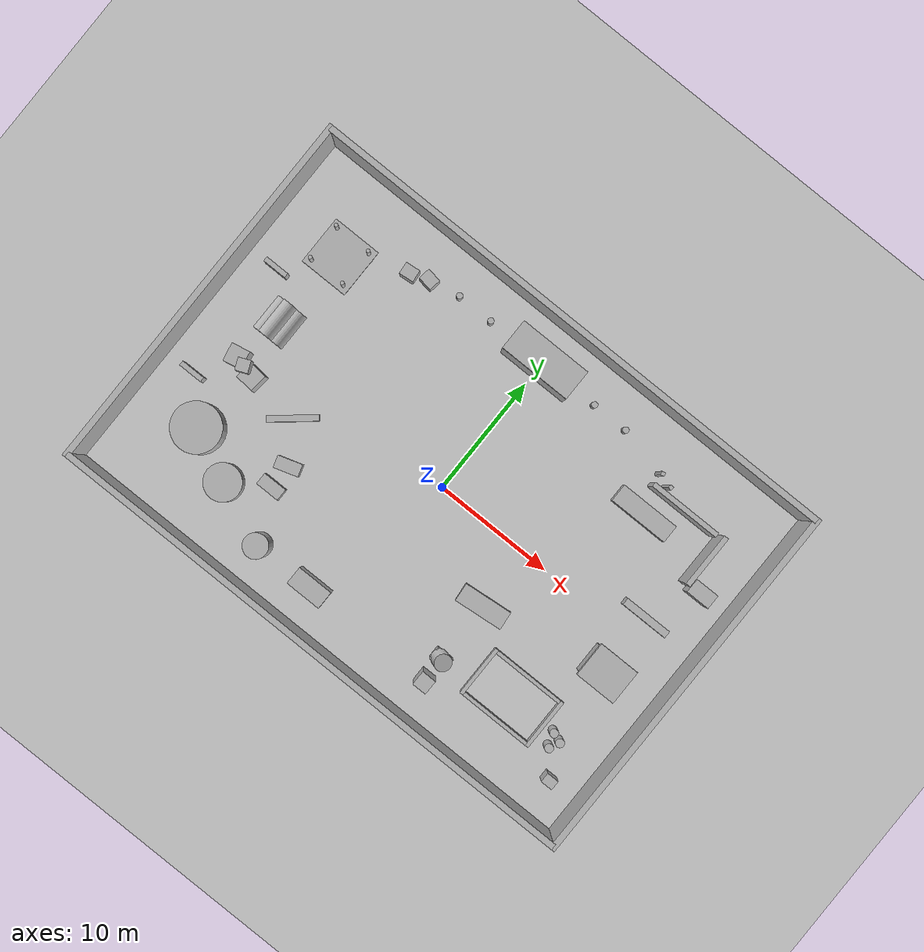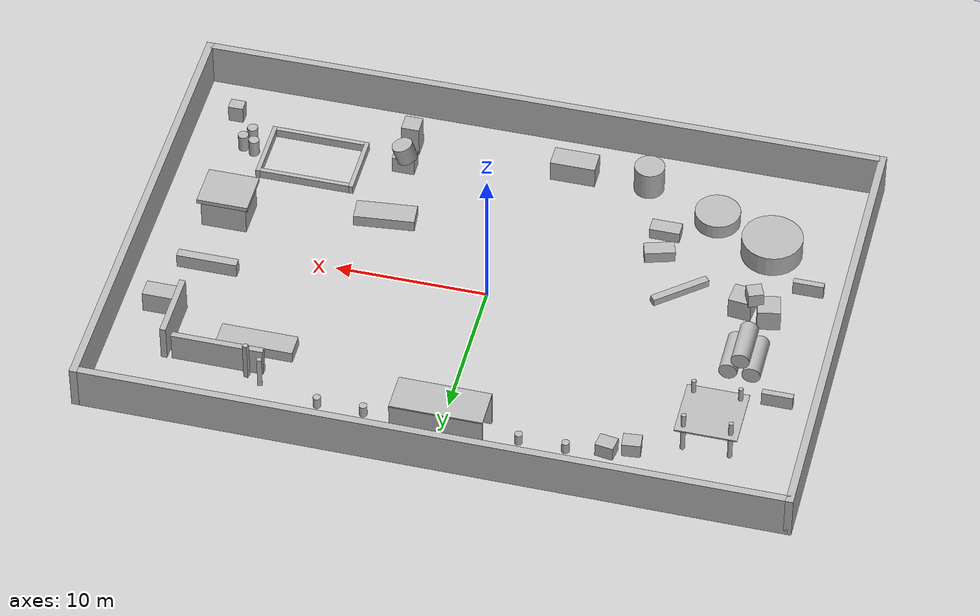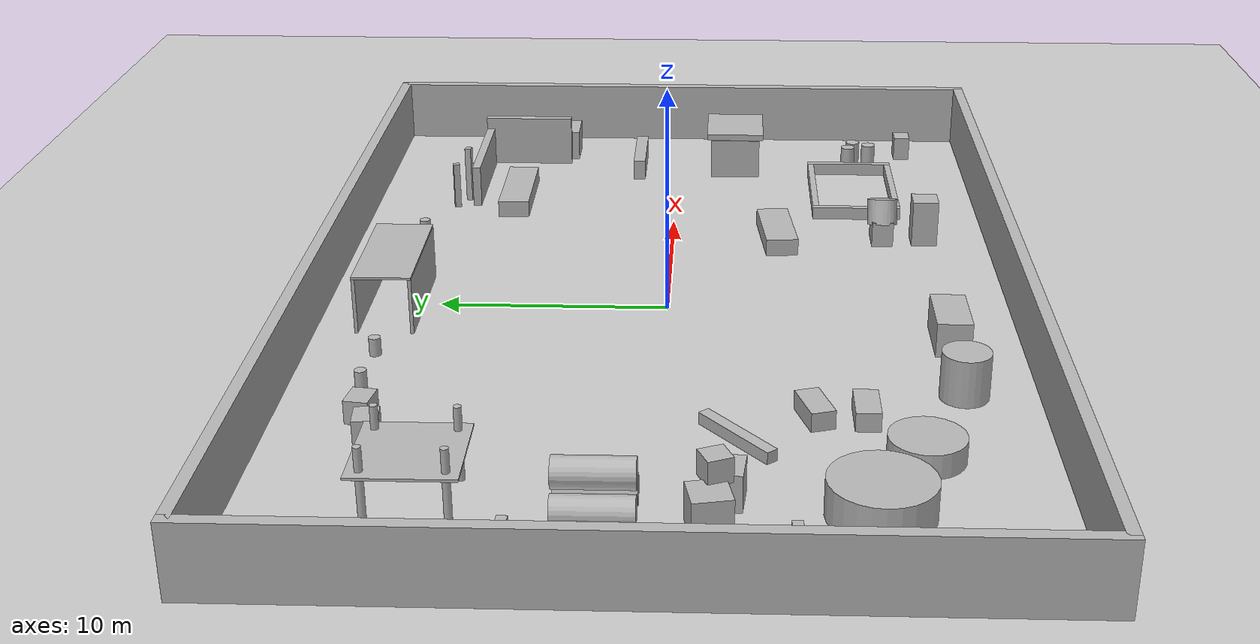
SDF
<sdf version='1.7'>
  <world name='construction_site_big'>

    <!-- Lighting -->
    <light name='sun' type='directional'>
      <cast_shadows>1</cast_shadows>
      <pose>0 0 15 0 -0 0</pose>
      <diffuse>0.8 0.8 0.8 1</diffuse>
      <specular>0.2 0.2 0.2 1</specular>
      <attenuation>
        <range>1000</range>
        <constant>0.9</constant>
        <linear>0.01</linear>
        <quadratic>0.001</quadratic>
      </attenuation>
      <direction>-0.5 0.1 -0.9</direction>
    </light>

    <!-- Ground Plane -->
    <model name='ground_plane'>
      <static>1</static>
      <link name='link'>
        <collision name='collision'>
          <geometry>
            <plane>
              <normal>0 0 1</normal>
              <size>50 35</size>
            </plane>
          </geometry>
          <surface>
            <friction>
              <ode>
                <mu>100</mu>
                <mu2>50</mu2>
              </ode>
            </friction>
          </surface>
        </collision>
        <visual name='visual'>
          <cast_shadows>0</cast_shadows>
          <geometry>
            <plane>
              <normal>0 0 1</normal>
              <size>50 35</size>
            </plane>
          </geometry>
          <material>
            <script>
              <uri>file://media/materials/scripts/gazebo.material</uri>
              <n>Gazebo/DarkGrey</n>
            </script>
          </material>
        </visual>
      </link>
    </model>

    <!-- Physics -->
    <physics type='ode'>
      <max_step_size>0.001</max_step_size>
      <real_time_factor>1</real_time_factor>
      <real_time_update_rate>1000</real_time_update_rate>
    </physics>

    <!-- Construction Site Features -->
    <model name='construction_site'>
      <pose>0 0 0 0 0 0</pose>
      <static>1</static>

      <!-- Boundary Walls (45x30m interior, 3m height) -->
      <link name='North_Wall'>
        <pose>0 15.25 1.5 0 0 0</pose>
        <collision name='col'><geometry><box><size>45.5 0.5 3</size></box></geometry></collision>
        <visual name='vis'><geometry><box><size>45.5 0.5 3</size></box></geometry>
        <material><script><n>Gazebo/Grey</n></script></material></visual>
      </link>
      <link name='South_Wall'>
        <pose>0 -15.25 1.5 0 0 0</pose>
        <collision name='col'><geometry><box><size>45.5 0.5 3</size></box></geometry></collision>
        <visual name='vis'><geometry><box><size>45.5 0.5 3</size></box></geometry>
        <material><script><n>Gazebo/Grey</n></script></material></visual>
      </link>
      <link name='East_Wall'>
        <pose>22.75 0 1.5 0 0 0</pose>
        <collision name='col'><geometry><box><size>0.5 31 3</size></box></geometry></collision>
        <visual name='vis'><geometry><box><size>0.5 31 3</size></box></geometry>
        <material><script><n>Gazebo/Grey</n></script></material></visual>
      </link>
      <link name='West_Wall'>
        <pose>-22.75 0 1.5 0 0 0</pose>
        <collision name='col'><geometry><box><size>0.5 31 3</size></box></geometry></collision>
        <visual name='vis'><geometry><box><size>0.5 31 3</size></box></geometry>
        <material><script><n>Gazebo/Grey</n></script></material></visual>
      </link>

      <!-- ============ NORTHWEST QUADRANT ============ -->

      <!-- Scaffolding Structure -->
      <link name='Scaffold_Post_1'>
        <pose>-18 10 1.5 0 0 0</pose>
        <collision name='col'><geometry><cylinder><radius>0.15</radius><length>3</length></cylinder></geometry></collision>
        <visual name='vis'><geometry><cylinder><radius>0.15</radius><length>3</length></cylinder></geometry>
        <material><script><n>Gazebo/Orange</n></script></material></visual>
      </link>
      <link name='Scaffold_Post_2'>
        <pose>-15 10 1.5 0 0 0</pose>
        <collision name='col'><geometry><cylinder><radius>0.15</radius><length>3</length></cylinder></geometry></collision>
        <visual name='vis'><geometry><cylinder><radius>0.15</radius><length>3</length></cylinder></geometry>
        <material><script><n>Gazebo/Orange</n></script></material></visual>
      </link>
      <link name='Scaffold_Post_3'>
        <pose>-18 7 1.5 0 0 0</pose>
        <collision name='col'><geometry><cylinder><radius>0.15</radius><length>3</length></cylinder></geometry></collision>
        <visual name='vis'><geometry><cylinder><radius>0.15</radius><length>3</length></cylinder></geometry>
        <material><script><n>Gazebo/Orange</n></script></material></visual>
      </link>
      <link name='Scaffold_Post_4'>
        <pose>-15 7 1.5 0 0 0</pose>
        <collision name='col'><geometry><cylinder><radius>0.15</radius><length>3</length></cylinder></geometry></collision>
        <visual name='vis'><geometry><cylinder><radius>0.15</radius><length>3</length></cylinder></geometry>
        <material><script><n>Gazebo/Orange</n></script></material></visual>
      </link>
      <link name='Scaffold_Platform'>
        <pose>-16.5 8.5 2 0 0 0</pose>
        <collision name='col'><geometry><box><size>4 4 0.1</size></box></geometry></collision>
        <visual name='vis'><geometry><box><size>4 4 0.1</size></box></geometry>
        <material><script><n>Gazebo/Wood</n></script></material></visual>
      </link>

      <!-- Concrete Pipes Stack -->
      <link name='Pipe_1'>
        <pose>-18 2 0.6 1.57 0 0</pose>
        <collision name='col'><geometry><cylinder><radius>0.6</radius><length>3</length></cylinder></geometry></collision>
        <visual name='vis'><geometry><cylinder><radius>0.6</radius><length>3</length></cylinder></geometry>
        <material><script><n>Gazebo/Rocky</n></script></material></visual>
      </link>
      <link name='Pipe_2'>
        <pose>-16.5 2 0.6 1.57 0 0</pose>
        <collision name='col'><geometry><cylinder><radius>0.6</radius><length>3</length></cylinder></geometry></collision>
        <visual name='vis'><geometry><cylinder><radius>0.6</radius><length>3</length></cylinder></geometry>
        <material><script><n>Gazebo/Rocky</n></script></material></visual>
      </link>
      <link name='Pipe_3'>
        <pose>-17.25 2 1.7 1.57 0 0</pose>
        <collision name='col'><geometry><cylinder><radius>0.6</radius><length>3</length></cylinder></geometry></collision>
        <visual name='vis'><geometry><cylinder><radius>0.6</radius><length>3</length></cylinder></geometry>
        <material><script><n>Gazebo/Rocky</n></script></material></visual>
      </link>

      <!-- Brick Pallets -->
      <link name='Brick_Pallet_1'>
        <pose>-12 11 0.5 0 0 0.1</pose>
        <collision name='col'><geometry><box><size>1.2 1 1</size></box></geometry></collision>
        <visual name='vis'><geometry><box><size>1.2 1 1</size></box></geometry>
        <material><script><n>Gazebo/Bricks</n></script></material></visual>
      </link>
      <link name='Brick_Pallet_2'>
        <pose>-10.5 11.5 0.5 0 0 -0.15</pose>
        <collision name='col'><geometry><box><size>1.2 1 1</size></box></geometry></collision>
        <visual name='vis'><geometry><box><size>1.2 1 1</size></box></geometry>
        <material><script><n>Gazebo/Bricks</n></script></material></visual>
      </link>

      <!-- ============ NORTHEAST QUADRANT ============ -->

      <!-- Partially Built Wall -->
      <link name='Partial_Wall_1'>
        <pose>15 10 1 0 0 0</pose>
        <collision name='col'><geometry><box><size>6 0.4 2</size></box></geometry></collision>
        <visual name='vis'><geometry><box><size>6 0.4 2</size></box></geometry>
        <material><script><n>Gazebo/Bricks</n></script></material></visual>
      </link>
      <link name='Partial_Wall_2'>
        <pose>18.5 8 1.25 0 0 0</pose>
        <collision name='col'><geometry><box><size>0.4 4.5 2.5</size></box></geometry></collision>
        <visual name='vis'><geometry><box><size>0.4 4.5 2.5</size></box></geometry>
        <material><script><n>Gazebo/Bricks</n></script></material></visual>
      </link>

      <!-- Steel Beams -->
      <link name='Steel_Beam_1'>
        <pose>12 11 0.2 0 1.57 0.3</pose>
        <collision name='col'><geometry><box><size>4 0.3 0.3</size></box></geometry></collision>
        <visual name='vis'><geometry><box><size>4 0.3 0.3</size></box></geometry>
        <material><script><n>Gazebo/Grey</n></script></material></visual>
      </link>
      <link name='Steel_Beam_2'>
        <pose>13 10.5 0.2 0 1.57 -0.2</pose>
        <collision name='col'><geometry><box><size>5 0.3 0.3</size></box></geometry></collision>
        <visual name='vis'><geometry><box><size>5 0.3 0.3</size></box></geometry>
        <material><script><n>Gazebo/Grey</n></script></material></visual>
      </link>
      <link name='Steel_Beam_Stack'>
        <pose>13 8 0.4 0 0 0</pose>
        <collision name='col'><geometry><box><size>5 1.5 0.8</size></box></geometry></collision>
        <visual name='vis'><geometry><box><size>5 1.5 0.8</size></box></geometry>
        <material><script><n>Gazebo/Grey</n></script></material></visual>
      </link>

      <!-- Concrete Barrier -->
      <link name='Concrete_Barrier_NE'>
        <pose>18 2 0.5 0 0 0</pose>
        <collision name='col'><geometry><box><size>4 0.6 1</size></box></geometry></collision>
        <visual name='vis'><geometry><box><size>4 0.6 1</size></box></geometry>
        <material><script><n>Gazebo/Rocky</n></script></material></visual>
      </link>

      <!-- Tool Shed -->
      <link name='Tool_Shed_Base'>
        <pose>18 -3 1 0 0 0</pose>
        <collision name='col'><geometry><box><size>3 2.5 2</size></box></geometry></collision>
        <visual name='vis'><geometry><box><size>3 2.5 2</size></box></geometry>
        <material><script><n>Gazebo/Blue</n></script></material></visual>
      </link>
      <link name='Tool_Shed_Roof'>
        <pose>18 -3 2.25 0 0 0</pose>
        <collision name='col'><geometry><box><size>3.4 2.9 0.3</size></box></geometry></collision>
        <visual name='vis'><geometry><box><size>3.4 2.9 0.3</size></box></geometry>
        <material><script><n>Gazebo/Red</n></script></material></visual>
      </link>

      <!-- ============ SOUTHWEST QUADRANT ============ -->

      <!-- Sand/Gravel Piles -->
      <link name='Sand_Pile'>
        <pose>-17 -8 0.75 0 0 0</pose>
        <collision name='col'><geometry><cylinder><radius>2</radius><length>1.5</length></cylinder></geometry></collision>
        <visual name='vis'><geometry><cylinder><radius>2</radius><length>1.5</length></cylinder></geometry>
        <material><script><n>Gazebo/SandyBrown</n></script></material></visual>
      </link>
      <link name='Gravel_Pile'>
        <pose>-13 -10 0.5 0 0 0</pose>
        <collision name='col'><geometry><cylinder><radius>1.5</radius><length>1</length></cylinder></geometry></collision>
        <visual name='vis'><geometry><cylinder><radius>1.5</radius><length>1</length></cylinder></geometry>
        <material><script><n>Gazebo/Rock</n></script></material></visual>
      </link>

      <!-- Wooden Crates Cluster -->
      <link name='Crate_Large_1'>
        <pose>-18 -2 0.75 0 0 0.2</pose>
        <collision name='col'><geometry><box><size>1.5 1.5 1.5</size></box></geometry></collision>
        <visual name='vis'><geometry><box><size>1.5 1.5 1.5</size></box></geometry>
        <material><script><n>Gazebo/Wood</n></script></material></visual>
      </link>
      <link name='Crate_Large_2'>
        <pose>-16.2 -2.5 0.75 0 0 -0.1</pose>
        <collision name='col'><geometry><box><size>1.5 1.5 1.5</size></box></geometry></collision>
        <visual name='vis'><geometry><box><size>1.5 1.5 1.5</size></box></geometry>
        <material><script><n>Gazebo/Wood</n></script></material></visual>
      </link>
      <link name='Crate_Small'>
        <pose>-17 -2.2 1.9 0 0 0.4</pose>
        <collision name='col'><geometry><box><size>1 1 1</size></box></geometry></collision>
        <visual name='vis'><geometry><box><size>1 1 1</size></box></geometry>
        <material><script><n>Gazebo/Wood</n></script></material></visual>
      </link>

      <!-- Concrete Blocks -->
      <link name='Concrete_Block_1'>
        <pose>-10 -8 0.4 0 0 0</pose>
        <collision name='col'><geometry><box><size>2 1 0.8</size></box></geometry></collision>
        <visual name='vis'><geometry><box><size>2 1 0.8</size></box></geometry>
        <material><script><n>Gazebo/Rocky</n></script></material></visual>
      </link>
      <link name='Concrete_Block_2'>
        <pose>-10 -6 0.4 0 0 0.3</pose>
        <collision name='col'><geometry><box><size>2 1 0.8</size></box></geometry></collision>
        <visual name='vis'><geometry><box><size>2 1 0.8</size></box></geometry>
        <material><script><n>Gazebo/Rocky</n></script></material></visual>
      </link>

      <!-- Rebar Bundle -->
      <link name='Rebar_Bundle'>
        <pose>-12 -3 0.3 0 0 0.7</pose>
        <collision name='col'><geometry><box><size>4 0.5 0.5</size></box></geometry></collision>
        <visual name='vis'><geometry><box><size>4 0.5 0.5</size></box></geometry>
        <material><script><n>Gazebo/DarkGrey</n></script></material></visual>
      </link>

      <!-- ============ SOUTHEAST QUADRANT ============ -->

      <!-- Excavation Pit (represented as low walls) -->
      <link name='Pit_Wall_N'>
        <pose>14 -7 0.3 0 0 0</pose>
        <collision name='col'><geometry><box><size>6 0.3 0.6</size></box></geometry></collision>
        <visual name='vis'><geometry><box><size>6 0.3 0.6</size></box></geometry>
        <material><script><n>Gazebo/DarkGrey</n></script></material></visual>
      </link>
      <link name='Pit_Wall_S'>
        <pose>14 -11 0.3 0 0 0</pose>
        <collision name='col'><geometry><box><size>6 0.3 0.6</size></box></geometry></collision>
        <visual name='vis'><geometry><box><size>6 0.3 0.6</size></box></geometry>
        <material><script><n>Gazebo/DarkGrey</n></script></material></visual>
      </link>
      <link name='Pit_Wall_E'>
        <pose>17.15 -9 0.3 0 0 0</pose>
        <collision name='col'><geometry><box><size>0.3 4.3 0.6</size></box></geometry></collision>
        <visual name='vis'><geometry><box><size>0.3 4.3 0.6</size></box></geometry>
        <material><script><n>Gazebo/DarkGrey</n></script></material></visual>
      </link>
      <link name='Pit_Wall_W'>
        <pose>10.85 -9 0.3 0 0 0</pose>
        <collision name='col'><geometry><box><size>0.3 4.3 0.6</size></box></geometry></collision>
        <visual name='vis'><geometry><box><size>0.3 4.3 0.6</size></box></geometry>
        <material><script><n>Gazebo/DarkGrey</n></script></material></visual>
      </link>

      <!-- Cement Mixer -->
      <link name='Cement_Mixer_Base'>
        <pose>8 -10 0.6 0 0 0</pose>
        <collision name='col'><geometry><box><size>1.5 1 1.2</size></box></geometry></collision>
        <visual name='vis'><geometry><box><size>1.5 1 1.2</size></box></geometry>
        <material><script><n>Gazebo/Yellow</n></script></material></visual>
      </link>
      <link name='Cement_Mixer_Drum'>
        <pose>8 -10 1.5 0 0.3 0</pose>
        <collision name='col'><geometry><cylinder><radius>0.7</radius><length>1.2</length></cylinder></geometry></collision>
        <visual name='vis'><geometry><cylinder><radius>0.7</radius><length>1.2</length></cylinder></geometry>
        <material><script><n>Gazebo/Orange</n></script></material></visual>
      </link>

      <!-- Lumber Stack -->
      <link name='Lumber_Stack'>
        <pose>8 -5 0.4 0 0 0.1</pose>
        <collision name='col'><geometry><box><size>4 1.5 0.8</size></box></geometry></collision>
        <visual name='vis'><geometry><box><size>4 1.5 0.8</size></box></geometry>
        <material><script><n>Gazebo/Wood</n></script></material></visual>
      </link>

      <!-- Oil Drums -->
      <link name='Oil_Drum_1'>
        <pose>18 -9 0.6 0 0 0</pose>
        <collision name='col'><geometry><cylinder><radius>0.35</radius><length>1.2</length></cylinder></geometry></collision>
        <visual name='vis'><geometry><cylinder><radius>0.35</radius><length>1.2</length></cylinder></geometry>
        <material><script><n>Gazebo/Black</n></script></material></visual>
      </link>
      <link name='Oil_Drum_2'>
        <pose>18.8 -9.3 0.6 0 0 0</pose>
        <collision name='col'><geometry><cylinder><radius>0.35</radius><length>1.2</length></cylinder></geometry></collision>
        <visual name='vis'><geometry><cylinder><radius>0.35</radius><length>1.2</length></cylinder></geometry>
        <material><script><n>Gazebo/Black</n></script></material></visual>
      </link>
      <link name='Oil_Drum_3'>
        <pose>18.4 -10.1 0.6 0 0 0</pose>
        <collision name='col'><geometry><cylinder><radius>0.35</radius><length>1.2</length></cylinder></geometry></collision>
        <visual name='vis'><geometry><cylinder><radius>0.35</radius><length>1.2</length></cylinder></geometry>
        <material><script><n>Gazebo/Black</n></script></material></visual>
      </link>

      <!-- Portable Toilet -->
      <link name='Portable_Toilet'>
        <pose>8 -12 1.1 0 0 0</pose>
        <collision name='col'><geometry><box><size>1.2 1.2 2.2</size></box></geometry></collision>
        <visual name='vis'><geometry><box><size>1.2 1.2 2.2</size></box></geometry>
        <material><script><n>Gazebo/Blue</n></script></material></visual>
      </link>

      <!-- ============ PERIMETER OBJECTS ============ -->

      <!-- Safety Barriers along paths -->
      <link name='Barrier_West_1'>
        <pose>-20 5 0.5 0 0 0</pose>
        <collision name='col'><geometry><box><size>2 0.4 1</size></box></geometry></collision>
        <visual name='vis'><geometry><box><size>2 0.4 1</size></box></geometry>
        <material><script><n>Gazebo/Orange</n></script></material></visual>
      </link>
      <link name='Barrier_West_2'>
        <pose>-20 -5 0.5 0 0 0</pose>
        <collision name='col'><geometry><box><size>2 0.4 1</size></box></geometry></collision>
        <visual name='vis'><geometry><box><size>2 0.4 1</size></box></geometry>
        <material><script><n>Gazebo/Orange</n></script></material></visual>
      </link>

      <!-- Traffic Cones -->
      <link name='Cone_1'>
        <pose>-8 12 0.4 0 0 0</pose>
        <collision name='col'><geometry><cylinder><radius>0.25</radius><length>0.8</length></cylinder></geometry></collision>
        <visual name='vis'><geometry><cylinder><radius>0.25</radius><length>0.8</length></cylinder></geometry>
        <material><script><n>Gazebo/Orange</n></script></material></visual>
      </link>
      <link name='Cone_2'>
        <pose>-5 12 0.4 0 0 0</pose>
        <collision name='col'><geometry><cylinder><radius>0.25</radius><length>0.8</length></cylinder></geometry></collision>
        <visual name='vis'><geometry><cylinder><radius>0.25</radius><length>0.8</length></cylinder></geometry>
        <material><script><n>Gazebo/Orange</n></script></material></visual>
      </link>
      <link name='Cone_3'>
        <pose>5 12 0.4 0 0 0</pose>
        <collision name='col'><geometry><cylinder><radius>0.25</radius><length>0.8</length></cylinder></geometry></collision>
        <visual name='vis'><geometry><cylinder><radius>0.25</radius><length>0.8</length></cylinder></geometry>
        <material><script><n>Gazebo/Orange</n></script></material></visual>
      </link>
      <link name='Cone_4'>
        <pose>8 12 0.4 0 0 0</pose>
        <collision name='col'><geometry><cylinder><radius>0.25</radius><length>0.8</length></cylinder></geometry></collision>
        <visual name='vis'><geometry><cylinder><radius>0.25</radius><length>0.8</length></cylinder></geometry>
        <material><script><n>Gazebo/Orange</n></script></material></visual>
      </link>

      <!-- Generator -->
      <link name='Generator'>
        <pose>20 6 0.75 0 0 0</pose>
        <collision name='col'><geometry><box><size>2 1.2 1.5</size></box></geometry></collision>
        <visual name='vis'><geometry><box><size>2 1.2 1.5</size></box></geometry>
        <material><script><n>Gazebo/Yellow</n></script></material></visual>
      </link>

      <!-- Water Tank -->
      <link name='Water_Tank'>
        <pose>-8 -12 1 0 0 0</pose>
        <collision name='col'><geometry><cylinder><radius>1</radius><length>2</length></cylinder></geometry></collision>
        <visual name='vis'><geometry><cylinder><radius>1</radius><length>2</length></cylinder></geometry>
        <material><script><n>Gazebo/Blue</n></script></material></visual>
      </link>

      <!-- Dumpster -->
      <link name='Dumpster'>
        <pose>-3 -12 0.75 0 0 0</pose>
        <collision name='col'><geometry><box><size>3 1.5 1.5</size></box></geometry></collision>
        <visual name='vis'><geometry><box><size>3 1.5 1.5</size></box></geometry>
        <material><script><n>Gazebo/Green</n></script></material></visual>
      </link>

      <!-- Porta-Power Station -->
      <link name='Power_Box'>
        <pose>20 -12 0.6 0 0 0</pose>
        <collision name='col'><geometry><box><size>1 0.8 1.2</size></box></geometry></collision>
        <visual name='vis'><geometry><box><size>1 0.8 1.2</size></box></geometry>
        <material><script><n>Gazebo/Grey</n></script></material></visual>
      </link>

    </model>

    <!-- Covered Walkway / Tunnel -->
    <model name='covered_walkway'>
      <pose>0 12 0 0 0 0</pose>
      <static>1</static>

      <link name='walkway_left'>
        <pose>0 1.2 1.25 0 0 0</pose>
        <collision name='c'><geometry><box><size>6 0.15 2.5</size></box></geometry></collision>
        <visual name='v'><geometry><box><size>6 0.15 2.5</size></box></geometry>
        <material><script><n>Gazebo/Wood</n></script></material></visual>
      </link>
      <link name='walkway_right'>
        <pose>0 -1.2 1.25 0 0 0</pose>
        <collision name='c'><geometry><box><size>6 0.15 2.5</size></box></geometry></collision>
        <visual name='v'><geometry><box><size>6 0.15 2.5</size></box></geometry>
        <material><script><n>Gazebo/Wood</n></script></material></visual>
      </link>
      <link name='walkway_roof'>
        <pose>0 0 2.55 0 0 0</pose>
        <collision name='c'><geometry><box><size>6 2.55 0.1</size></box></geometry></collision>
        <visual name='v'><geometry><box><size>6 2.55 0.1</size></box></geometry>
        <material><script><n>Gazebo/Orange</n></script></material></visual>
      </link>
    </model>

  </world>
</sdf>
